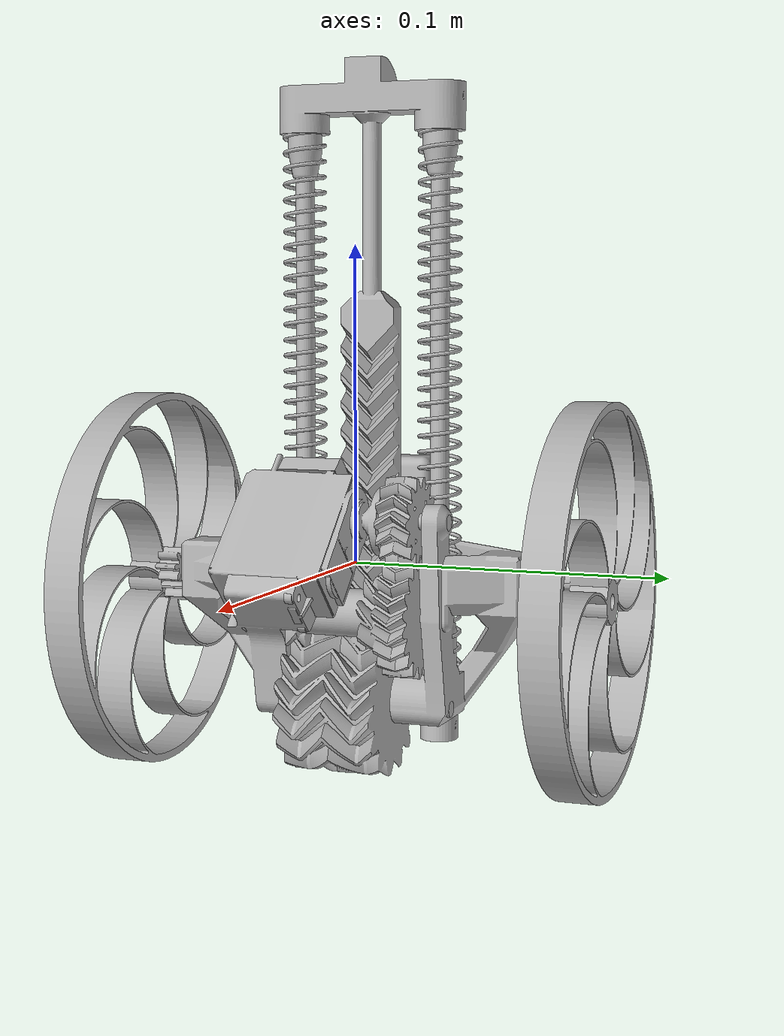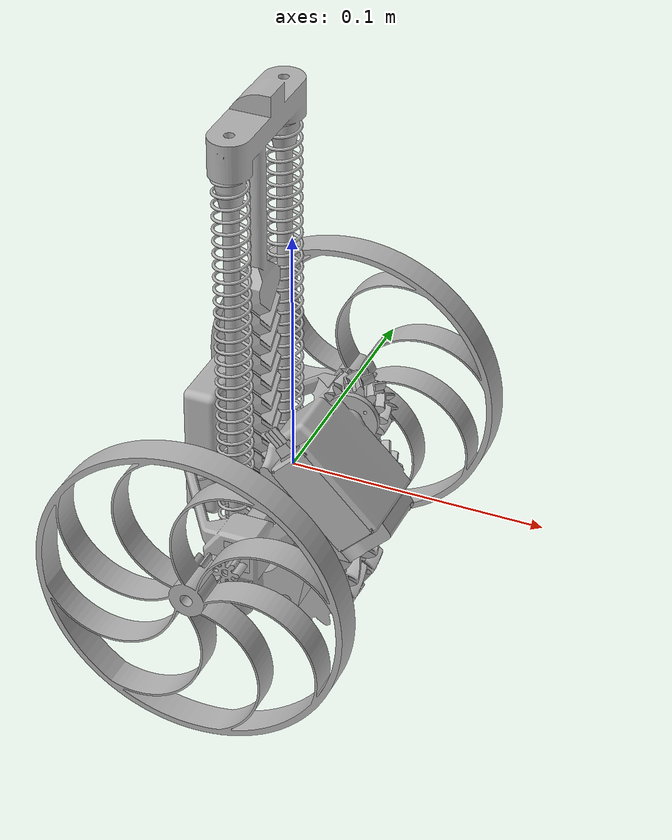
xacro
<?xml version="1.0"?>
<robot name="eecs4421_1d_hopper" xmlns:xacro="http://www.ros.org/wiki/xacro">
  <!-- Wrapper for corrected joints URDF - base_link is root, motion handled via clamp mode -->
  <xacro:include filename="urdf/corrected_joints_urdf.xacro" />
  <!-- No world link - base_link is the root link and will be free in PyBullet -->
  <!-- 1D motion will be constrained via code using _clamp_to_1d() method -->
</robot>

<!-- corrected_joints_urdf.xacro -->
<robot name="corrected_joints_urdf" xmlns:xacro="http://www.ros.org/wiki/xacro">

<xacro:include filename="materials.xacro" />
<!-- Note: .trans and .gazebo files are for ROS/Gazebo, not needed for PyBullet -->
<link name="base_link">
  <inertial>
    <origin xyz="-0.013514090010165696 0.00024331067916718278 0.0690405797342188" rpy="0 0 0"/>
    <mass value="0.2824006607720704"/>
    <inertia ixx="0.001426" iyy="0.001359" izz="7.2e-05" ixy="0.0" iyz="0.0" ixz="-5e-06"/>
  </inertial>
  <visual>
    <origin xyz="0 0 0" rpy="0 0 0"/>
    <geometry>
      <mesh filename="meshes/base_link.stl" scale="0.001 0.001 0.001"/>
    </geometry>
    <material name="silver"/>
  </visual>
  <collision>
    <origin xyz="0 0 0" rpy="0 0 0"/>
    <geometry>
      <mesh filename="meshes/base_link.stl" scale="0.001 0.001 0.001"/>
    </geometry>
  </collision>
</link>

<link name="Spring_2_1_v1_1_1_1">
  <inertial>
    <origin xyz="2.9307851018650632e-05 -4.8964241178072604e-05 -0.08138700684547578" rpy="0 0 0"/>
    <mass value="0.012593013169921327"/>
    <inertia ixx="3.2e-05" iyy="3.2e-05" izz="1e-06" ixy="0.0" iyz="0.0" ixz="-0.0"/>
  </inertial>
  <visual>
    <origin xyz="0.013319 0.022758 -0.135804" rpy="0 0 0"/>
    <geometry>
      <mesh filename="meshes/Spring_2_1_v1_1_1_1.stl" scale="0.001 0.001 0.001"/>
    </geometry>
    <material name="silver"/>
  </visual>
  <collision>
    <origin xyz="0.013319 0.022758 -0.135804" rpy="0 0 0"/>
    <geometry>
      <mesh filename="meshes/Spring_2_1_v1_1_1_1.stl" scale="0.001 0.001 0.001"/>
    </geometry>
  </collision>
</link>

<link name="Spring_1_1_v1_1_1_1_1">
  <inertial>
    <origin xyz="-0.00010111466336726847 -1.1734179564099056e-05 -0.08138700684547563" rpy="0 0 0"/>
    <mass value="0.012593013169921313"/>
    <inertia ixx="3.2e-05" iyy="3.2e-05" izz="1e-06" ixy="0.0" iyz="0.0" ixz="-0.0"/>
  </inertial>
  <visual>
    <origin xyz="0.013319 -0.023242 -0.135804" rpy="0 0 0"/>
    <geometry>
      <mesh filename="meshes/Spring_1_1_v1_1_1_1_1.stl" scale="0.001 0.001 0.001"/>
    </geometry>
    <material name="silver"/>
  </visual>
  <collision>
    <origin xyz="0.013319 -0.023242 -0.135804" rpy="0 0 0"/>
    <geometry>
      <mesh filename="meshes/Spring_1_1_v1_1_1_1_1.stl" scale="0.001 0.001 0.001"/>
    </geometry>
  </collision>
</link>

<link name="5x63mm_Aluminium_Rod__2_1_v1_1">
  <inertial>
    <origin xyz="-3.6128128096460377e-07 0.03160000806298522 -3.623302492258146e-07" rpy="0 0 0"/>
    <mass value="0.009741293420618765"/>
    <inertia ixx="3e-06" iyy="0.0" izz="3e-06" ixy="-0.0" iyz="0.0" ixz="0.0"/>
  </inertial>
  <visual>
    <origin xyz="-0.014983 0.028358 0.013297" rpy="0 0 0"/>
    <geometry>
      <mesh filename="meshes/5x63mm_Aluminium_Rod__2_1_v1_1.stl" scale="0.001 0.001 0.001"/>
    </geometry>
    <material name="silver"/>
  </visual>
  <collision>
    <origin xyz="-0.014983 0.028358 0.013297" rpy="0 0 0"/>
    <geometry>
      <mesh filename="meshes/5x63mm_Aluminium_Rod__2_1_v1_1.stl" scale="0.001 0.001 0.001"/>
    </geometry>
  </collision>
</link>

<link name="motor_1_v1_1">
  <inertial>
    <origin xyz="-0.014789621893783248 0.003124183549591557 0.014757253552300956" rpy="0 0 0"/>
    <mass value="0.24917752024157286"/>
    <inertia ixx="5.5e-05" iyy="4.4e-05" izz="5.5e-05" ixy="1e-06" iyz="-1e-06" ixz="1.4e-05"/>
  </inertial>
  <visual>
    <origin xyz="-0.03902 0.013546 0.00552" rpy="0 0 0"/>
    <geometry>
      <mesh filename="meshes/motor_1_v1_1.stl" scale="0.001 0.001 0.001"/>
    </geometry>
    <material name="silver"/>
  </visual>
  <collision>
    <origin xyz="-0.03902 0.013546 0.00552" rpy="0 0 0"/>
    <geometry>
      <mesh filename="meshes/motor_1_v1_1.stl" scale="0.001 0.001 0.001"/>
    </geometry>
  </collision>
</link>

<link name="wheel_2_complete_1_v2_1">
  <inertial>
    <origin xyz="-3.3718511046375646e-06 -0.013584361592914915 6.754300349003789e-07" rpy="0 0 0"/>
    <mass value="0.14618559800198688"/>
    <inertia ixx="0.00019" iyy="0.000375" izz="0.00019" ixy="-0.0" iyz="0.0" ixz="0.0"/>
  </inertial>
  <visual>
    <origin xyz="0.006473 0.060708 0.008985" rpy="0 0 0"/>
    <geometry>
      <mesh filename="meshes/wheel_2_complete_1_v2_1.stl" scale="0.001 0.001 0.001"/>
    </geometry>
    <material name="silver"/>
  </visual>
  <collision>
    <origin xyz="0.006473 0.060708 0.008985" rpy="0 0 0"/>
    <geometry>
      <mesh filename="meshes/wheel_2_complete_1_v2_1.stl" scale="0.001 0.001 0.001"/>
    </geometry>
  </collision>
</link>

<link name="wheel_1_complete_1_v1_1">
  <inertial>
    <origin xyz="-3.3718467262128585e-06 0.013584378715335813 6.754317408552007e-07" rpy="0 0 0"/>
    <mass value="0.14618560543842687"/>
    <inertia ixx="0.00019" iyy="0.000375" izz="0.00019" ixy="0.0" iyz="-0.0" ixz="0.0"/>
  </inertial>
  <visual>
    <origin xyz="0.006473 -0.061292 0.008985" rpy="0 0 0"/>
    <geometry>
      <mesh filename="meshes/wheel_1_complete_1_v1_1.stl" scale="0.001 0.001 0.001"/>
    </geometry>
    <material name="silver"/>
  </visual>
  <collision>
    <origin xyz="0.006473 -0.061292 0.008985" rpy="0 0 0"/>
    <geometry>
      <mesh filename="meshes/wheel_1_complete_1_v1_1.stl" scale="0.001 0.001 0.001"/>
    </geometry>
  </collision>
</link>

<link name="Motor_1_1_v1_1">
  <inertial>
    <origin xyz="0.004996649817929426 -0.011974487243527066 -0.005999973775597767" rpy="0 0 0"/>
    <mass value="0.022989886144955934"/>
    <inertia ixx="2e-06" iyy="0.0" izz="1e-06" ixy="0.0" iyz="-0.0" ixz="-0.0"/>
  </inertial>
  <visual>
    <origin xyz="0.002382 -0.057202 -0.002506" rpy="0 0 0"/>
    <geometry>
      <mesh filename="meshes/Motor_1_1_v1_1.stl" scale="0.001 0.001 0.001"/>
    </geometry>
    <material name="silver"/>
  </visual>
  <collision>
    <origin xyz="0.002382 -0.057202 -0.002506" rpy="0 0 0"/>
    <geometry>
      <mesh filename="meshes/Motor_1_1_v1_1.stl" scale="0.001 0.001 0.001"/>
    </geometry>
  </collision>
</link>

<link name="Motor_2_1_v1_1">
  <inertial>
    <origin xyz="0.004996649817928127 0.01197450461385928 -0.005999973775597859" rpy="0 0 0"/>
    <mass value="0.022989886144955944"/>
    <inertia ixx="2e-06" iyy="0.0" izz="1e-06" ixy="-0.0" iyz="0.0" ixz="-0.0"/>
  </inertial>
  <visual>
    <origin xyz="0.002382 0.056758 -0.002506" rpy="0 0 0"/>
    <geometry>
      <mesh filename="meshes/Motor_2_1_v1_1.stl" scale="0.001 0.001 0.001"/>
    </geometry>
    <material name="silver"/>
  </visual>
  <collision>
    <origin xyz="0.002382 0.056758 -0.002506" rpy="0 0 0"/>
    <geometry>
      <mesh filename="meshes/Motor_2_1_v1_1.stl" scale="0.001 0.001 0.001"/>
    </geometry>
  </collision>
</link>

<link name="Motor_Gear_1_1_v1_1">
  <inertial>
    <origin xyz="1.8784622158076348e-05 0.0035000093073439473 -3.869260724927853e-08" rpy="0 0 0"/>
    <mass value="0.002745880235689738"/>
    <inertia ixx="0.0" iyy="0.0" izz="0.0" ixy="0.0" iyz="0.0" ixz="0.0"/>
  </inertial>
  <visual>
    <origin xyz="-0.002573 -0.060202 0.003523" rpy="0 0 0"/>
    <geometry>
      <mesh filename="meshes/Motor_Gear_1_1_v1_1.stl" scale="0.001 0.001 0.001"/>
    </geometry>
    <material name="silver"/>
  </visual>
  <collision>
    <origin xyz="-0.002573 -0.060202 0.003523" rpy="0 0 0"/>
    <geometry>
      <mesh filename="meshes/Motor_Gear_1_1_v1_1.stl" scale="0.001 0.001 0.001"/>
    </geometry>
  </collision>
</link>

<link name="Second_Gear_1_v1_1">
  <inertial>
    <origin xyz="-3.611020787941399e-10 -0.013996863973097079 -1.9367322502683582e-10" rpy="0 0 0"/>
    <mass value="0.12592322311736695"/>
    <inertia ixx="2.7e-05" iyy="1.4e-05" izz="2.7e-05" ixy="0.0" iyz="-0.0" ixz="0.0"/>
  </inertial>
  <visual>
    <origin xyz="-0.015 -0.027842 0.0133" rpy="0 0 0"/>
    <geometry>
      <mesh filename="meshes/Second_Gear_1_v1_1.stl" scale="0.001 0.001 0.001"/>
    </geometry>
    <material name="silver"/>
  </visual>
  <collision>
    <origin xyz="-0.015 -0.027842 0.0133" rpy="0 0 0"/>
    <geometry>
      <mesh filename="meshes/Second_Gear_1_v1_1.stl" scale="0.001 0.001 0.001"/>
    </geometry>
  </collision>
</link>

<link name="Motor_Gear_2_1_v1_1">
  <inertial>
    <origin xyz="1.8936466043807058e-05 -0.0034999919370117746 6.437635519541268e-08" rpy="0 0 0"/>
    <mass value="0.002745880235689775"/>
    <inertia ixx="0.0" iyy="0.0" izz="0.0" ixy="-0.0" iyz="0.0" ixz="0.0"/>
  </inertial>
  <visual>
    <origin xyz="-0.002571 0.059758 0.003498" rpy="0 0 0"/>
    <geometry>
      <mesh filename="meshes/Motor_Gear_2_1_v1_1.stl" scale="0.001 0.001 0.001"/>
    </geometry>
    <material name="silver"/>
  </visual>
  <collision>
    <origin xyz="-0.002571 0.059758 0.003498" rpy="0 0 0"/>
    <geometry>
      <mesh filename="meshes/Motor_Gear_2_1_v1_1.stl" scale="0.001 0.001 0.001"/>
    </geometry>
  </collision>
</link>

<link name="2S_LiPo_1_v1_1">
  <inertial>
    <origin xyz="-0.006999631251769917 8.692172037070818e-09 -6.845474279440489e-09" rpy="0 0 0"/>
    <mass value="0.17561484928297033"/>
    <inertia ixx="5.6e-05" iyy="4.6e-05" izz="1.5e-05" ixy="-0.0" iyz="0.0" ixz="-0.0"/>
  </inertial>
  <visual>
    <origin xyz="0.025319 -0.000242 -0.004004" rpy="0 0 0"/>
    <geometry>
      <mesh filename="meshes/2S_LiPo_1_v1_1.stl" scale="0.001 0.001 0.001"/>
    </geometry>
    <material name="silver"/>
  </visual>
  <collision>
    <origin xyz="0.025319 -0.000242 -0.004004" rpy="0 0 0"/>
    <geometry>
      <mesh filename="meshes/2S_LiPo_1_v1_1.stl" scale="0.001 0.001 0.001"/>
    </geometry>
  </collision>
</link>

<link name="moving_frame_1_v1_1">
  <inertial>
    <origin xyz="0.013616715709348168 0.021707483601140144 0.02951565572802407" rpy="0 0 0"/>
    <mass value="0.4412684216504674"/>
    <inertia ixx="0.000588" iyy="0.000281" izz="0.000543" ixy="1.7e-05" iyz="1.8e-05" ixz="-3.8e-05"/>
  </inertial>
  <visual>
    <origin xyz="0.013319 0.022758 0.047996" rpy="0 0 0"/>
    <geometry>
      <mesh filename="meshes/moving_frame_1_v1_1.stl" scale="0.001 0.001 0.001"/>
    </geometry>
    <material name="silver"/>
  </visual>
  <collision>
    <origin xyz="0.013319 0.022758 0.047996" rpy="0 0 0"/>
    <geometry>
      <mesh filename="meshes/moving_frame_1_v1_1.stl" scale="0.001 0.001 0.001"/>
    </geometry>
  </collision>
</link>

<link name="Main_Gear_1_v1_1">
  <inertial>
    <origin xyz="0.0006468404293882742 -0.015599991892107774 0.0003664112445932455" rpy="0 0 0"/>
    <mass value="0.2816436332857111"/>
    <inertia ixx="5.2e-05" iyy="5.5e-05" izz="5e-05" ixy="0.0" iyz="0.0" ixz="1e-06"/>
  </inertial>
  <visual>
    <origin xyz="-0.009058 -0.015842 0.042609" rpy="0 0 0"/>
    <geometry>
      <mesh filename="meshes/Main_Gear_1_v1_1.stl" scale="0.001 0.001 0.001"/>
    </geometry>
    <material name="silver"/>
  </visual>
  <collision>
    <origin xyz="-0.009058 -0.015842 0.042609" rpy="0 0 0"/>
    <geometry>
      <mesh filename="meshes/Main_Gear_1_v1_1.stl" scale="0.001 0.001 0.001"/>
    </geometry>
  </collision>
</link>

<link name="5x63mm_Aluminium_Rod__1_1_v1_1">
  <inertial>
    <origin xyz="3.687482312830781e-07 0.03160000806298602 -6.8453424872938484e-09" rpy="0 0 0"/>
    <mass value="0.009741293420618774"/>
    <inertia ixx="3e-06" iyy="0.0" izz="3e-06" ixy="-0.0" iyz="-0.0" ixz="0.0"/>
  </inertial>
  <visual>
    <origin xyz="-0.008981 0.028358 0.042496" rpy="0 0 0"/>
    <geometry>
      <mesh filename="meshes/5x63mm_Aluminium_Rod__1_1_v1_1.stl" scale="0.001 0.001 0.001"/>
    </geometry>
    <material name="silver"/>
  </visual>
  <collision>
    <origin xyz="-0.008981 0.028358 0.042496" rpy="0 0 0"/>
    <geometry>
      <mesh filename="meshes/5x63mm_Aluminium_Rod__1_1_v1_1.stl" scale="0.001 0.001 0.001"/>
    </geometry>
  </collision>
</link>

<link name="Servo_Gear_1_v1_1">
  <inertial>
    <origin xyz="1.5808685818741175e-09 -0.004999991936778844 1.045276603502121e-07" rpy="0 0 0"/>
    <mass value="0.033507073455686986"/>
    <inertia ixx="2e-06" iyy="3e-06" izz="2e-06" ixy="-0.0" iyz="0.0" ixz="0.0"/>
  </inertial>
  <visual>
    <origin xyz="-0.017412 -0.027842 -0.016062" rpy="0 0 0"/>
    <geometry>
      <mesh filename="meshes/Servo_Gear_1_v1_1.stl" scale="0.001 0.001 0.001"/>
    </geometry>
    <material name="silver"/>
  </visual>
  <collision>
    <origin xyz="-0.017412 -0.027842 -0.016062" rpy="0 0 0"/>
    <geometry>
      <mesh filename="meshes/Servo_Gear_1_v1_1.stl" scale="0.001 0.001 0.001"/>
    </geometry>
  </collision>
</link>

<link name="Servo_Pin_5x16mm_1_v1_1">
  <inertial>
    <origin xyz="3.991380445426962e-07 -0.007999991937014558 -6.481572515509848e-08" rpy="0 0 0"/>
    <mass value="0.0024661502330680964"/>
    <inertia ixx="0.0" iyy="0.0" izz="0.0" ixy="-0.0" iyz="-0.0" ixz="-0.0"/>
  </inertial>
  <visual>
    <origin xyz="-0.017409 -0.036842 -0.016098" rpy="0 0 0"/>
    <geometry>
      <mesh filename="meshes/Servo_Pin_5x16mm_1_v1_1.stl" scale="0.001 0.001 0.001"/>
    </geometry>
    <material name="silver"/>
  </visual>
  <collision>
    <origin xyz="-0.017409 -0.036842 -0.016098" rpy="0 0 0"/>
    <geometry>
      <mesh filename="meshes/Servo_Pin_5x16mm_1_v1_1.stl" scale="0.001 0.001 0.001"/>
    </geometry>
  </collision>
</link>

<joint name="spring_2_sliding" type="prismatic">
  <origin xyz="-0.013319 -0.022758 0.135804" rpy="0 0 0"/>
  <parent link="base_link"/>
  <child link="Spring_2_1_v1_1_1_1"/>
  <axis xyz="0.0 0.0 -1.0"/>
  <limit upper="0.015" lower="0.0" effort="100" velocity="100"/>
</joint>

<joint name="spring_1_sliding" type="prismatic">
  <origin xyz="-0.013319 0.023242 0.135804" rpy="0 0 0"/>
  <parent link="base_link"/>
  <child link="Spring_1_1_v1_1_1_1_1"/>
  <axis xyz="0.0 0.0 -1.0"/>
  <limit upper="0.015" lower="0.0" effort="100" velocity="100"/>
</joint>

<joint name="secondary_gear_axle_to_frame" type="fixed">
  <origin xyz="0.028302 -0.0056 0.034699" rpy="0 0 0"/>
  <parent link="moving_frame_1_v1_1"/>
  <child link="5x63mm_Aluminium_Rod__2_1_v1_1"/>
</joint>

<joint name="motor_to_frame" type="fixed">
  <origin xyz="0.052339 0.009212 0.042476" rpy="0 0 0"/>
  <parent link="moving_frame_1_v1_1"/>
  <child link="motor_1_v1_1"/>
</joint>

<joint name="wheel_2_to_frame" type="continuous">
  <origin xyz="0.006846 -0.03795 0.039011" rpy="0 0 0"/>
  <parent link="moving_frame_1_v1_1"/>
  <child link="wheel_2_complete_1_v2_1"/>
  <axis xyz="0.0 1.0 -0.0"/>
</joint>

<joint name="wheel_1_to_frame" type="continuous">
  <origin xyz="0.006846 0.08405 0.039011" rpy="0 0 0"/>
  <parent link="moving_frame_1_v1_1"/>
  <child link="wheel_1_complete_1_v1_1"/>
  <axis xyz="-0.0 -1.0 0.0"/>
</joint>

<joint name="motor_1_to_frame" type="fixed">
  <origin xyz="0.010937 0.07996 0.050502" rpy="0 0 0"/>
  <parent link="moving_frame_1_v1_1"/>
  <child link="Motor_1_1_v1_1"/>
</joint>

<joint name="motor_2_to_frame" type="fixed">
  <origin xyz="0.010937 -0.034 0.050502" rpy="0 0 0"/>
  <parent link="moving_frame_1_v1_1"/>
  <child link="Motor_2_1_v1_1"/>
</joint>

<joint name="motor_gear_1_revolution" type="continuous">
  <origin xyz="0.004955 0.003 -0.006029" rpy="0 0 0"/>
  <parent link="Motor_1_1_v1_1"/>
  <child link="Motor_Gear_1_1_v1_1"/>
  <axis xyz="0.0 1.0 0.0"/>
</joint>

<joint name="secondary_gear_revolution" type="continuous">
  <origin xyz="1.7e-05 0.0562 -3e-06" rpy="0 0 0"/>
  <parent link="5x63mm_Aluminium_Rod__2_1_v1_1"/>
  <child link="Second_Gear_1_v1_1"/>
  <axis xyz="0.0 1.0 0.0"/>
</joint>

<joint name="motor_gear_2_revolution" type="continuous">
  <origin xyz="0.004953 -0.003 -0.006004" rpy="0 0 0"/>
  <parent link="Motor_2_1_v1_1"/>
  <child link="Motor_Gear_2_1_v1_1"/>
  <axis xyz="-0.0 -1.0 -0.0"/>
</joint>

<joint name="lipo_to_frame" type="fixed">
  <origin xyz="-0.012 0.023 0.052" rpy="0 0 0"/>
  <parent link="moving_frame_1_v1_1"/>
  <child link="2S_LiPo_1_v1_1"/>
</joint>

<joint name="moving_frame_to_base_link" type="prismatic">
  <origin xyz="-0.013319 -0.022758 -0.047996" rpy="0 0 0"/>
  <parent link="base_link"/>
  <child link="moving_frame_1_v1_1"/>
  <axis xyz="-0.0 -0.0 1.0"/>
  <limit upper="0.139" lower="0.0" effort="100" velocity="100"/>
</joint>

<joint name="main_gear_revolution" type="continuous">
  <origin xyz="7.7e-05 0.0442 -0.000113" rpy="0 0 0"/>
  <parent link="5x63mm_Aluminium_Rod__1_1_v1_1"/>
  <child link="Main_Gear_1_v1_1"/>
  <axis xyz="0.0 1.0 0.0"/>
</joint>

<joint name="main_gear_axle_to_moving_frame" type="fixed">
  <origin xyz="0.0223 -0.0056 0.0055" rpy="0 0 0"/>
  <parent link="moving_frame_1_v1_1"/>
  <child link="5x63mm_Aluminium_Rod__1_1_v1_1"/>
</joint>

<joint name="servo_gear_revolution" type="continuous">
  <origin xyz="3e-06 -0.009 -3.6e-05" rpy="0 0 0"/>
  <parent link="Servo_Pin_5x16mm_1_v1_1"/>
  <child link="Servo_Gear_1_v1_1"/>
  <axis xyz="0.0 1.0 -0.0"/>
</joint>

<joint name="servo_pin_to_frame" type="fixed">
  <origin xyz="0.030728 0.0596 0.064094" rpy="0 0 0"/>
  <parent link="moving_frame_1_v1_1"/>
  <child link="Servo_Pin_5x16mm_1_v1_1"/>
</joint>

</robot>

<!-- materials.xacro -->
<robot name="corrected_joints_urdf" xmlns:xacro="http://www.ros.org/wiki/xacro" >

<material name="silver">
  <color rgba="0.700 0.700 0.700 1.000"/>
</material>

</robot>
